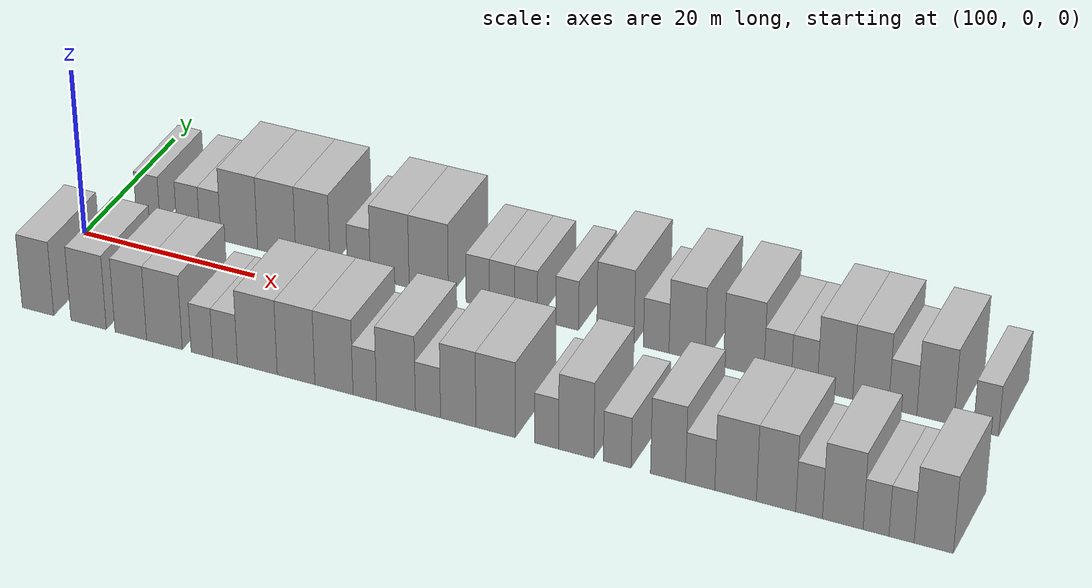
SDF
<sdf version="1.6">
 <world name="default">
  <model name="building_25">
   <static>1</static>
   <pose>105.1513 9.5000 0 0.000000 0.000000 1.570796</pose>
   <link name="link">
    <pose>0 0 3.00 0 0 0</pose>
    <collision name="collision"><geometry><box><size>10.0000 2.8169 6.0000</size></box></geometry></collision>
    <visual name="visual">
     <cast_shadows>0</cast_shadows>
     <geometry><box><size>10.0000 2.8169 6.0000</size></box></geometry>
     <material>
      <script>
       <uri>model://HANNAS_wall/materials/scripts</uri>
       <uri>model://HANNAS_wall/materials/textures</uri>
       <name>vrc/HANNAS_wall</name>
      </script>
     </material>
    </visual>
   </link>
  </model>
  <model name="building_26">
   <static>1</static>
   <pose>109.9169 9.5000 0 0.000000 0.000000 1.570796</pose>
   <link name="link">
    <pose>0 0 3.00 0 0 0</pose>
    <collision name="collision"><geometry><box><size>10.0000 2.7142 6.0000</size></box></geometry></collision>
    <visual name="visual">
     <cast_shadows>0</cast_shadows>
     <geometry><box><size>10.0000 2.7142 6.0000</size></box></geometry>
     <material>
      <script>
       <uri>model://HANNAS_wall/materials/scripts</uri>
       <uri>model://HANNAS_wall/materials/textures</uri>
       <name>vrc/HANNAS_wall</name>
      </script>
     </material>
    </visual>
   </link>
  </model>
  <model name="building_27">
   <static>1</static>
   <pose>112.5251 9.5000 0 0.000000 0.000000 1.570796</pose>
   <link name="link">
    <pose>0 0 3.00 0 0 0</pose>
    <collision name="collision"><geometry><box><size>10.0000 2.5022 6.0000</size></box></geometry></collision>
    <visual name="visual">
     <cast_shadows>0</cast_shadows>
     <geometry><box><size>10.0000 2.5022 6.0000</size></box></geometry>
     <material>
      <script>
       <uri>model://HANNAS_wall/materials/scripts</uri>
       <uri>model://HANNAS_wall/materials/textures</uri>
       <name>vrc/HANNAS_wall</name>
      </script>
     </material>
    </visual>
   </link>
  </model>
  <model name="building_28">
   <static>1</static>
   <pose>115.9399 9.5000 0 0.000000 0.000000 1.570796</pose>
   <link name="link">
    <pose>0 0 4.50 0 0 0</pose>
    <collision name="collision"><geometry><box><size>10.0000 4.3274 9.0000</size></box></geometry></collision>
    <visual name="visual">
     <cast_shadows>0</cast_shadows>
     <geometry><box><size>10.0000 4.3274 9.0000</size></box></geometry>
     <material>
      <script>
       <uri>model://HANNAS_wall/materials/scripts</uri>
       <uri>model://HANNAS_wall/materials/textures</uri>
       <name>vrc/HANNAS_wall</name>
      </script>
     </material>
    </visual>
   </link>
  </model>
  <model name="building_29">
   <static>1</static>
   <pose>120.3343 9.5000 0 0.000000 0.000000 1.570796</pose>
   <link name="link">
    <pose>0 0 4.50 0 0 0</pose>
    <collision name="collision"><geometry><box><size>10.0000 4.4612 9.0000</size></box></geometry></collision>
    <visual name="visual">
     <cast_shadows>0</cast_shadows>
     <geometry><box><size>10.0000 4.4612 9.0000</size></box></geometry>
     <material>
      <script>
       <uri>model://HANNAS_wall/materials/scripts</uri>
       <uri>model://HANNAS_wall/materials/textures</uri>
       <name>vrc/HANNAS_wall</name>
      </script>
     </material>
    </visual>
   </link>
  </model>
  <model name="building_30">
   <static>1</static>
   <pose>124.5504 9.5000 0 0.000000 0.000000 1.570796</pose>
   <link name="link">
    <pose>0 0 4.50 0 0 0</pose>
    <collision name="collision"><geometry><box><size>10.0000 3.9710 9.0000</size></box></geometry></collision>
    <visual name="visual">
     <cast_shadows>0</cast_shadows>
     <geometry><box><size>10.0000 3.9710 9.0000</size></box></geometry>
     <material>
      <script>
       <uri>model://HANNAS_wall/materials/scripts</uri>
       <uri>model://HANNAS_wall/materials/textures</uri>
       <name>vrc/HANNAS_wall</name>
      </script>
     </material>
    </visual>
   </link>
  </model>
  <model name="building_31">
   <static>1</static>
   <pose>129.8526 9.5000 0 0.000000 0.000000 1.570796</pose>
   <link name="link">
    <pose>0 0 3.00 0 0 0</pose>
    <collision name="collision"><geometry><box><size>10.0000 2.6334 6.0000</size></box></geometry></collision>
    <visual name="visual">
     <cast_shadows>0</cast_shadows>
     <geometry><box><size>10.0000 2.6334 6.0000</size></box></geometry>
     <material>
      <script>
       <uri>model://HANNAS_wall/materials/scripts</uri>
       <uri>model://HANNAS_wall/materials/textures</uri>
       <name>vrc/HANNAS_wall</name>
      </script>
     </material>
    </visual>
   </link>
  </model>
  <model name="building_32">
   <static>1</static>
   <pose>133.3780 9.5000 0 0.000000 0.000000 1.570796</pose>
   <link name="link">
    <pose>0 0 4.50 0 0 0</pose>
    <collision name="collision"><geometry><box><size>10.0000 4.4174 9.0000</size></box></geometry></collision>
    <visual name="visual">
     <cast_shadows>0</cast_shadows>
     <geometry><box><size>10.0000 4.4174 9.0000</size></box></geometry>
     <material>
      <script>
       <uri>model://HANNAS_wall/materials/scripts</uri>
       <uri>model://HANNAS_wall/materials/textures</uri>
       <name>vrc/HANNAS_wall</name>
      </script>
     </material>
    </visual>
   </link>
  </model>
  <model name="building_33">
   <static>1</static>
   <pose>137.8079 9.5000 0 0.000000 0.000000 1.570796</pose>
   <link name="link">
    <pose>0 0 4.50 0 0 0</pose>
    <collision name="collision"><geometry><box><size>10.0000 4.4425 9.0000</size></box></geometry></collision>
    <visual name="visual">
     <cast_shadows>0</cast_shadows>
     <geometry><box><size>10.0000 4.4425 9.0000</size></box></geometry>
     <material>
      <script>
       <uri>model://HANNAS_wall/materials/scripts</uri>
       <uri>model://HANNAS_wall/materials/textures</uri>
       <name>vrc/HANNAS_wall</name>
      </script>
     </material>
    </visual>
   </link>
  </model>
  <model name="building_34">
   <static>1</static>
   <pose>143.3333 9.5000 0 0.000000 0.000000 1.570796</pose>
   <link name="link">
    <pose>0 0 3.00 0 0 0</pose>
    <collision name="collision"><geometry><box><size>10.0000 2.6082 6.0000</size></box></geometry></collision>
    <visual name="visual">
     <cast_shadows>0</cast_shadows>
     <geometry><box><size>10.0000 2.6082 6.0000</size></box></geometry>
     <material>
      <script>
       <uri>model://HANNAS_wall/materials/scripts</uri>
       <uri>model://HANNAS_wall/materials/textures</uri>
       <name>vrc/HANNAS_wall</name>
      </script>
     </material>
    </visual>
   </link>
  </model>
  <model name="building_35">
   <static>1</static>
   <pose>146.0515 9.5000 0 0.000000 0.000000 1.570796</pose>
   <link name="link">
    <pose>0 0 3.00 0 0 0</pose>
    <collision name="collision"><geometry><box><size>10.0000 2.8283 6.0000</size></box></geometry></collision>
    <visual name="visual">
     <cast_shadows>0</cast_shadows>
     <geometry><box><size>10.0000 2.8283 6.0000</size></box></geometry>
     <material>
      <script>
       <uri>model://HANNAS_wall/materials/scripts</uri>
       <uri>model://HANNAS_wall/materials/textures</uri>
       <name>vrc/HANNAS_wall</name>
      </script>
     </material>
    </visual>
   </link>
  </model>
  <model name="building_36">
   <static>1</static>
   <pose>148.7235 9.5000 0 0.000000 0.000000 1.570796</pose>
   <link name="link">
    <pose>0 0 3.00 0 0 0</pose>
    <collision name="collision"><geometry><box><size>10.0000 2.5156 6.0000</size></box></geometry></collision>
    <visual name="visual">
     <cast_shadows>0</cast_shadows>
     <geometry><box><size>10.0000 2.5156 6.0000</size></box></geometry>
     <material>
      <script>
       <uri>model://HANNAS_wall/materials/scripts</uri>
       <uri>model://HANNAS_wall/materials/textures</uri>
       <name>vrc/HANNAS_wall</name>
      </script>
     </material>
    </visual>
   </link>
  </model>
  <model name="building_37">
   <static>1</static>
   <pose>153.2467 9.5000 0 0.000000 0.000000 1.570796</pose>
   <link name="link">
    <pose>0 0 3.00 0 0 0</pose>
    <collision name="collision"><geometry><box><size>10.0000 2.5309 6.0000</size></box></geometry></collision>
    <visual name="visual">
     <cast_shadows>0</cast_shadows>
     <geometry><box><size>10.0000 2.5309 6.0000</size></box></geometry>
     <material>
      <script>
       <uri>model://HANNAS_wall/materials/scripts</uri>
       <uri>model://HANNAS_wall/materials/textures</uri>
       <name>vrc/HANNAS_wall</name>
      </script>
     </material>
    </visual>
   </link>
  </model>
  <model name="building_38">
   <static>1</static>
   <pose>158.5469 9.5000 0 0.000000 0.000000 1.570796</pose>
   <link name="link">
    <pose>0 0 4.50 0 0 0</pose>
    <collision name="collision"><geometry><box><size>10.0000 4.0694 9.0000</size></box></geometry></collision>
    <visual name="visual">
     <cast_shadows>0</cast_shadows>
     <geometry><box><size>10.0000 4.0694 9.0000</size></box></geometry>
     <material>
      <script>
       <uri>model://HANNAS_wall/materials/scripts</uri>
       <uri>model://HANNAS_wall/materials/textures</uri>
       <name>vrc/HANNAS_wall</name>
      </script>
     </material>
    </visual>
   </link>
  </model>
  <model name="building_39">
   <static>1</static>
   <pose>162.9694 9.5000 0 0.000000 0.000000 1.570796</pose>
   <link name="link">
    <pose>0 0 3.00 0 0 0</pose>
    <collision name="collision"><geometry><box><size>10.0000 2.7758 6.0000</size></box></geometry></collision>
    <visual name="visual">
     <cast_shadows>0</cast_shadows>
     <geometry><box><size>10.0000 2.7758 6.0000</size></box></geometry>
     <material>
      <script>
       <uri>model://HANNAS_wall/materials/scripts</uri>
       <uri>model://HANNAS_wall/materials/textures</uri>
       <name>vrc/HANNAS_wall</name>
      </script>
     </material>
    </visual>
   </link>
  </model>
  <model name="building_40">
   <static>1</static>
   <pose>166.2814 9.5000 0 0.000000 0.000000 1.570796</pose>
   <link name="link">
    <pose>0 0 4.50 0 0 0</pose>
    <collision name="collision"><geometry><box><size>10.0000 3.8482 9.0000</size></box></geometry></collision>
    <visual name="visual">
     <cast_shadows>0</cast_shadows>
     <geometry><box><size>10.0000 3.8482 9.0000</size></box></geometry>
     <material>
      <script>
       <uri>model://HANNAS_wall/materials/scripts</uri>
       <uri>model://HANNAS_wall/materials/textures</uri>
       <name>vrc/HANNAS_wall</name>
      </script>
     </material>
    </visual>
   </link>
  </model>
  <model name="building_41">
   <static>1</static>
   <pose>172.3492 9.5000 0 0.000000 0.000000 1.570796</pose>
   <link name="link">
    <pose>0 0 4.50 0 0 0</pose>
    <collision name="collision"><geometry><box><size>10.0000 4.2873 9.0000</size></box></geometry></collision>
    <visual name="visual">
     <cast_shadows>0</cast_shadows>
     <geometry><box><size>10.0000 4.2873 9.0000</size></box></geometry>
     <material>
      <script>
       <uri>model://HANNAS_wall/materials/scripts</uri>
       <uri>model://HANNAS_wall/materials/textures</uri>
       <name>vrc/HANNAS_wall</name>
      </script>
     </material>
    </visual>
   </link>
  </model>
  <model name="building_42">
   <static>1</static>
   <pose>175.9388 9.5000 0 0.000000 0.000000 1.570796</pose>
   <link name="link">
    <pose>0 0 3.00 0 0 0</pose>
    <collision name="collision"><geometry><box><size>10.0000 2.8920 6.0000</size></box></geometry></collision>
    <visual name="visual">
     <cast_shadows>0</cast_shadows>
     <geometry><box><size>10.0000 2.8920 6.0000</size></box></geometry>
     <material>
      <script>
       <uri>model://HANNAS_wall/materials/scripts</uri>
       <uri>model://HANNAS_wall/materials/textures</uri>
       <name>vrc/HANNAS_wall</name>
      </script>
     </material>
    </visual>
   </link>
  </model>
  <model name="building_43">
   <static>1</static>
   <pose>178.7550 9.5000 0 0.000000 0.000000 1.570796</pose>
   <link name="link">
    <pose>0 0 3.00 0 0 0</pose>
    <collision name="collision"><geometry><box><size>10.0000 2.7403 6.0000</size></box></geometry></collision>
    <visual name="visual">
     <cast_shadows>0</cast_shadows>
     <geometry><box><size>10.0000 2.7403 6.0000</size></box></geometry>
     <material>
      <script>
       <uri>model://HANNAS_wall/materials/scripts</uri>
       <uri>model://HANNAS_wall/materials/textures</uri>
       <name>vrc/HANNAS_wall</name>
      </script>
     </material>
    </visual>
   </link>
  </model>
  <model name="building_44">
   <static>1</static>
   <pose>181.9767 9.5000 0 0.000000 0.000000 1.570796</pose>
   <link name="link">
    <pose>0 0 4.50 0 0 0</pose>
    <collision name="collision"><geometry><box><size>10.0000 3.7032 9.0000</size></box></geometry></collision>
    <visual name="visual">
     <cast_shadows>0</cast_shadows>
     <geometry><box><size>10.0000 3.7032 9.0000</size></box></geometry>
     <material>
      <script>
       <uri>model://HANNAS_wall/materials/scripts</uri>
       <uri>model://HANNAS_wall/materials/textures</uri>
       <name>vrc/HANNAS_wall</name>
      </script>
     </material>
    </visual>
   </link>
  </model>
  <model name="building_45">
   <static>1</static>
   <pose>185.6967 9.5000 0 0.000000 0.000000 1.570796</pose>
   <link name="link">
    <pose>0 0 4.50 0 0 0</pose>
    <collision name="collision"><geometry><box><size>10.0000 3.7369 9.0000</size></box></geometry></collision>
    <visual name="visual">
     <cast_shadows>0</cast_shadows>
     <geometry><box><size>10.0000 3.7369 9.0000</size></box></geometry>
     <material>
      <script>
       <uri>model://HANNAS_wall/materials/scripts</uri>
       <uri>model://HANNAS_wall/materials/textures</uri>
       <name>vrc/HANNAS_wall</name>
      </script>
     </material>
    </visual>
   </link>
  </model>
  <model name="building_46">
   <static>1</static>
   <pose>189.0179 9.5000 0 0.000000 0.000000 1.570796</pose>
   <link name="link">
    <pose>0 0 3.00 0 0 0</pose>
    <collision name="collision"><geometry><box><size>10.0000 2.9056 6.0000</size></box></geometry></collision>
    <visual name="visual">
     <cast_shadows>0</cast_shadows>
     <geometry><box><size>10.0000 2.9056 6.0000</size></box></geometry>
     <material>
      <script>
       <uri>model://HANNAS_wall/materials/scripts</uri>
       <uri>model://HANNAS_wall/materials/textures</uri>
       <name>vrc/HANNAS_wall</name>
      </script>
     </material>
    </visual>
   </link>
  </model>
  <model name="building_47">
   <static>1</static>
   <pose>192.3687 9.5000 0 0.000000 0.000000 1.570796</pose>
   <link name="link">
    <pose>0 0 4.50 0 0 0</pose>
    <collision name="collision"><geometry><box><size>10.0000 3.7958 9.0000</size></box></geometry></collision>
    <visual name="visual">
     <cast_shadows>0</cast_shadows>
     <geometry><box><size>10.0000 3.7958 9.0000</size></box></geometry>
     <material>
      <script>
       <uri>model://HANNAS_wall/materials/scripts</uri>
       <uri>model://HANNAS_wall/materials/textures</uri>
       <name>vrc/HANNAS_wall</name>
      </script>
     </material>
    </visual>
   </link>
  </model>
  <model name="building_48">
   <static>1</static>
   <pose>197.5424 9.5000 0 0.000000 0.000000 1.570796</pose>
   <link name="link">
    <pose>0 0 3.00 0 0 0</pose>
    <collision name="collision"><geometry><box><size>10.0000 2.5516 6.0000</size></box></geometry></collision>
    <visual name="visual">
     <cast_shadows>0</cast_shadows>
     <geometry><box><size>10.0000 2.5516 6.0000</size></box></geometry>
     <material>
      <script>
       <uri>model://HANNAS_wall/materials/scripts</uri>
       <uri>model://HANNAS_wall/materials/textures</uri>
       <name>vrc/HANNAS_wall</name>
      </script>
     </material>
    </visual>
   </link>
  </model>
  <model name="building_74">
   <static>1</static>
   <pose>102.6564 -9.5000 0 0.000000 0.000000 1.570796</pose>
   <link name="link">
    <pose>0 0 4.50 0 0 0</pose>
    <collision name="collision"><geometry><box><size>10.0000 3.6771 9.0000</size></box></geometry></collision>
    <visual name="visual">
     <cast_shadows>0</cast_shadows>
     <geometry><box><size>10.0000 3.6771 9.0000</size></box></geometry>
     <material>
      <script>
       <uri>model://HANNAS_wall/materials/scripts</uri>
       <uri>model://HANNAS_wall/materials/textures</uri>
       <name>vrc/HANNAS_wall</name>
      </script>
     </material>
    </visual>
   </link>
  </model>
  <model name="building_75">
   <static>1</static>
   <pose>108.5452 -9.5000 0 0.000000 0.000000 1.570796</pose>
   <link name="link">
    <pose>0 0 4.50 0 0 0</pose>
    <collision name="collision"><geometry><box><size>10.0000 4.1005 9.0000</size></box></geometry></collision>
    <visual name="visual">
     <cast_shadows>0</cast_shadows>
     <geometry><box><size>10.0000 4.1005 9.0000</size></box></geometry>
     <material>
      <script>
       <uri>model://HANNAS_wall/materials/scripts</uri>
       <uri>model://HANNAS_wall/materials/textures</uri>
       <name>vrc/HANNAS_wall</name>
      </script>
     </material>
    </visual>
   </link>
  </model>
  <model name="building_76">
   <static>1</static>
   <pose>113.4081 -9.5000 0 0.000000 0.000000 1.570796</pose>
   <link name="link">
    <pose>0 0 4.50 0 0 0</pose>
    <collision name="collision"><geometry><box><size>10.0000 3.6253 9.0000</size></box></geometry></collision>
    <visual name="visual">
     <cast_shadows>0</cast_shadows>
     <geometry><box><size>10.0000 3.6253 9.0000</size></box></geometry>
     <material>
      <script>
       <uri>model://HANNAS_wall/materials/scripts</uri>
       <uri>model://HANNAS_wall/materials/textures</uri>
       <name>vrc/HANNAS_wall</name>
      </script>
     </material>
    </visual>
   </link>
  </model>
  <model name="building_77">
   <static>1</static>
   <pose>117.2557 -9.5000 0 0.000000 0.000000 1.570796</pose>
   <link name="link">
    <pose>0 0 4.50 0 0 0</pose>
    <collision name="collision"><geometry><box><size>10.0000 4.0700 9.0000</size></box></geometry></collision>
    <visual name="visual">
     <cast_shadows>0</cast_shadows>
     <geometry><box><size>10.0000 4.0700 9.0000</size></box></geometry>
     <material>
      <script>
       <uri>model://HANNAS_wall/materials/scripts</uri>
       <uri>model://HANNAS_wall/materials/textures</uri>
       <name>vrc/HANNAS_wall</name>
      </script>
     </material>
    </visual>
   </link>
  </model>
  <model name="building_78">
   <static>1</static>
   <pose>121.5148 -9.5000 0 0.000000 0.000000 1.570796</pose>
   <link name="link">
    <pose>0 0 3.00 0 0 0</pose>
    <collision name="collision"><geometry><box><size>10.0000 2.4481 6.0000</size></box></geometry></collision>
    <visual name="visual">
     <cast_shadows>0</cast_shadows>
     <geometry><box><size>10.0000 2.4481 6.0000</size></box></geometry>
     <material>
      <script>
       <uri>model://HANNAS_wall/materials/scripts</uri>
       <uri>model://HANNAS_wall/materials/textures</uri>
       <name>vrc/HANNAS_wall</name>
      </script>
     </material>
    </visual>
   </link>
  </model>
  <model name="building_79">
   <static>1</static>
   <pose>124.1214 -9.5000 0 0.000000 0.000000 1.570796</pose>
   <link name="link">
    <pose>0 0 3.00 0 0 0</pose>
    <collision name="collision"><geometry><box><size>10.0000 2.7652 6.0000</size></box></geometry></collision>
    <visual name="visual">
     <cast_shadows>0</cast_shadows>
     <geometry><box><size>10.0000 2.7652 6.0000</size></box></geometry>
     <material>
      <script>
       <uri>model://HANNAS_wall/materials/scripts</uri>
       <uri>model://HANNAS_wall/materials/textures</uri>
       <name>vrc/HANNAS_wall</name>
      </script>
     </material>
    </visual>
   </link>
  </model>
  <model name="building_80">
   <static>1</static>
   <pose>127.7281 -9.5000 0 0.000000 0.000000 1.570796</pose>
   <link name="link">
    <pose>0 0 4.50 0 0 0</pose>
    <collision name="collision"><geometry><box><size>10.0000 4.4482 9.0000</size></box></geometry></collision>
    <visual name="visual">
     <cast_shadows>0</cast_shadows>
     <geometry><box><size>10.0000 4.4482 9.0000</size></box></geometry>
     <material>
      <script>
       <uri>model://HANNAS_wall/materials/scripts</uri>
       <uri>model://HANNAS_wall/materials/textures</uri>
       <name>vrc/HANNAS_wall</name>
      </script>
     </material>
    </visual>
   </link>
  </model>
  <model name="building_81">
   <static>1</static>
   <pose>132.0433 -9.5000 0 0.000000 0.000000 1.570796</pose>
   <link name="link">
    <pose>0 0 4.50 0 0 0</pose>
    <collision name="collision"><geometry><box><size>10.0000 4.1823 9.0000</size></box></geometry></collision>
    <visual name="visual">
     <cast_shadows>0</cast_shadows>
     <geometry><box><size>10.0000 4.1823 9.0000</size></box></geometry>
     <material>
      <script>
       <uri>model://HANNAS_wall/materials/scripts</uri>
       <uri>model://HANNAS_wall/materials/textures</uri>
       <name>vrc/HANNAS_wall</name>
      </script>
     </material>
    </visual>
   </link>
  </model>
  <model name="building_82">
   <static>1</static>
   <pose>136.2312 -9.5000 0 0.000000 0.000000 1.570796</pose>
   <link name="link">
    <pose>0 0 4.50 0 0 0</pose>
    <collision name="collision"><geometry><box><size>10.0000 4.1935 9.0000</size></box></geometry></collision>
    <visual name="visual">
     <cast_shadows>0</cast_shadows>
     <geometry><box><size>10.0000 4.1935 9.0000</size></box></geometry>
     <material>
      <script>
       <uri>model://HANNAS_wall/materials/scripts</uri>
       <uri>model://HANNAS_wall/materials/textures</uri>
       <name>vrc/HANNAS_wall</name>
      </script>
     </material>
    </visual>
   </link>
  </model>
  <model name="building_83">
   <static>1</static>
   <pose>139.6091 -9.5000 0 0.000000 0.000000 1.570796</pose>
   <link name="link">
    <pose>0 0 3.00 0 0 0</pose>
    <collision name="collision"><geometry><box><size>10.0000 2.5623 6.0000</size></box></geometry></collision>
    <visual name="visual">
     <cast_shadows>0</cast_shadows>
     <geometry><box><size>10.0000 2.5623 6.0000</size></box></geometry>
     <material>
      <script>
       <uri>model://HANNAS_wall/materials/scripts</uri>
       <uri>model://HANNAS_wall/materials/textures</uri>
       <name>vrc/HANNAS_wall</name>
      </script>
     </material>
    </visual>
   </link>
  </model>
  <model name="building_84">
   <static>1</static>
   <pose>143.0068 -9.5000 0 0.000000 0.000000 1.570796</pose>
   <link name="link">
    <pose>0 0 4.50 0 0 0</pose>
    <collision name="collision"><geometry><box><size>10.0000 4.2331 9.0000</size></box></geometry></collision>
    <visual name="visual">
     <cast_shadows>0</cast_shadows>
     <geometry><box><size>10.0000 4.2331 9.0000</size></box></geometry>
     <material>
      <script>
       <uri>model://HANNAS_wall/materials/scripts</uri>
       <uri>model://HANNAS_wall/materials/textures</uri>
       <name>vrc/HANNAS_wall</name>
      </script>
     </material>
    </visual>
   </link>
  </model>
  <model name="building_85">
   <static>1</static>
   <pose>146.4750 -9.5000 0 0.000000 0.000000 1.570796</pose>
   <link name="link">
    <pose>0 0 3.00 0 0 0</pose>
    <collision name="collision"><geometry><box><size>10.0000 2.7032 6.0000</size></box></geometry></collision>
    <visual name="visual">
     <cast_shadows>0</cast_shadows>
     <geometry><box><size>10.0000 2.7032 6.0000</size></box></geometry>
     <material>
      <script>
       <uri>model://HANNAS_wall/materials/scripts</uri>
       <uri>model://HANNAS_wall/materials/textures</uri>
       <name>vrc/HANNAS_wall</name>
      </script>
     </material>
    </visual>
   </link>
  </model>
  <model name="building_86">
   <static>1</static>
   <pose>149.7241 -9.5000 0 0.000000 0.000000 1.570796</pose>
   <link name="link">
    <pose>0 0 4.50 0 0 0</pose>
    <collision name="collision"><geometry><box><size>10.0000 3.7951 9.0000</size></box></geometry></collision>
    <visual name="visual">
     <cast_shadows>0</cast_shadows>
     <geometry><box><size>10.0000 3.7951 9.0000</size></box></geometry>
     <material>
      <script>
       <uri>model://HANNAS_wall/materials/scripts</uri>
       <uri>model://HANNAS_wall/materials/textures</uri>
       <name>vrc/HANNAS_wall</name>
      </script>
     </material>
    </visual>
   </link>
  </model>
  <model name="building_87">
   <static>1</static>
   <pose>153.7301 -9.5000 0 0.000000 0.000000 1.570796</pose>
   <link name="link">
    <pose>0 0 4.50 0 0 0</pose>
    <collision name="collision"><geometry><box><size>10.0000 4.2170 9.0000</size></box></geometry></collision>
    <visual name="visual">
     <cast_shadows>0</cast_shadows>
     <geometry><box><size>10.0000 4.2170 9.0000</size></box></geometry>
     <material>
      <script>
       <uri>model://HANNAS_wall/materials/scripts</uri>
       <uri>model://HANNAS_wall/materials/textures</uri>
       <name>vrc/HANNAS_wall</name>
      </script>
     </material>
    </visual>
   </link>
  </model>
  <model name="building_88">
   <static>1</static>
   <pose>159.1124 -9.5000 0 0.000000 0.000000 1.570796</pose>
   <link name="link">
    <pose>0 0 3.00 0 0 0</pose>
    <collision name="collision"><geometry><box><size>10.0000 2.5476 6.0000</size></box></geometry></collision>
    <visual name="visual">
     <cast_shadows>0</cast_shadows>
     <geometry><box><size>10.0000 2.5476 6.0000</size></box></geometry>
     <material>
      <script>
       <uri>model://HANNAS_wall/materials/scripts</uri>
       <uri>model://HANNAS_wall/materials/textures</uri>
       <name>vrc/HANNAS_wall</name>
      </script>
     </material>
    </visual>
   </link>
  </model>
  <model name="building_89">
   <static>1</static>
   <pose>162.2343 -9.5000 0 0.000000 0.000000 1.570796</pose>
   <link name="link">
    <pose>0 0 4.50 0 0 0</pose>
    <collision name="collision"><geometry><box><size>10.0000 3.6961 9.0000</size></box></geometry></collision>
    <visual name="visual">
     <cast_shadows>0</cast_shadows>
     <geometry><box><size>10.0000 3.6961 9.0000</size></box></geometry>
     <material>
      <script>
       <uri>model://HANNAS_wall/materials/scripts</uri>
       <uri>model://HANNAS_wall/materials/textures</uri>
       <name>vrc/HANNAS_wall</name>
      </script>
     </material>
    </visual>
   </link>
  </model>
  <model name="building_90">
   <static>1</static>
   <pose>166.5253 -9.5000 0 0.000000 0.000000 1.570796</pose>
   <link name="link">
    <pose>0 0 3.00 0 0 0</pose>
    <collision name="collision"><geometry><box><size>10.0000 2.8860 6.0000</size></box></geometry></collision>
    <visual name="visual">
     <cast_shadows>0</cast_shadows>
     <geometry><box><size>10.0000 2.8860 6.0000</size></box></geometry>
     <material>
      <script>
       <uri>model://HANNAS_wall/materials/scripts</uri>
       <uri>model://HANNAS_wall/materials/textures</uri>
       <name>vrc/HANNAS_wall</name>
      </script>
     </material>
    </visual>
   </link>
  </model>
  <model name="building_91">
   <static>1</static>
   <pose>171.7703 -9.5000 0 0.000000 0.000000 1.570796</pose>
   <link name="link">
    <pose>0 0 4.50 0 0 0</pose>
    <collision name="collision"><geometry><box><size>10.0000 3.6038 9.0000</size></box></geometry></collision>
    <visual name="visual">
     <cast_shadows>0</cast_shadows>
     <geometry><box><size>10.0000 3.6038 9.0000</size></box></geometry>
     <material>
      <script>
       <uri>model://HANNAS_wall/materials/scripts</uri>
       <uri>model://HANNAS_wall/materials/textures</uri>
       <name>vrc/HANNAS_wall</name>
      </script>
     </material>
    </visual>
   </link>
  </model>
  <model name="building_92">
   <static>1</static>
   <pose>175.0695 -9.5000 0 0.000000 0.000000 1.570796</pose>
   <link name="link">
    <pose>0 0 3.00 0 0 0</pose>
    <collision name="collision"><geometry><box><size>10.0000 2.9947 6.0000</size></box></geometry></collision>
    <visual name="visual">
     <cast_shadows>0</cast_shadows>
     <geometry><box><size>10.0000 2.9947 6.0000</size></box></geometry>
     <material>
      <script>
       <uri>model://HANNAS_wall/materials/scripts</uri>
       <uri>model://HANNAS_wall/materials/textures</uri>
       <name>vrc/HANNAS_wall</name>
      </script>
     </material>
    </visual>
   </link>
  </model>
  <model name="building_93">
   <static>1</static>
   <pose>178.6800 -9.5000 0 0.000000 0.000000 1.570796</pose>
   <link name="link">
    <pose>0 0 4.50 0 0 0</pose>
    <collision name="collision"><geometry><box><size>10.0000 4.2261 9.0000</size></box></geometry></collision>
    <visual name="visual">
     <cast_shadows>0</cast_shadows>
     <geometry><box><size>10.0000 4.2261 9.0000</size></box></geometry>
     <material>
      <script>
       <uri>model://HANNAS_wall/materials/scripts</uri>
       <uri>model://HANNAS_wall/materials/textures</uri>
       <name>vrc/HANNAS_wall</name>
      </script>
     </material>
    </visual>
   </link>
  </model>
  <model name="building_94">
   <static>1</static>
   <pose>182.7765 -9.5000 0 0.000000 0.000000 1.570796</pose>
   <link name="link">
    <pose>0 0 4.50 0 0 0</pose>
    <collision name="collision"><geometry><box><size>10.0000 3.9670 9.0000</size></box></geometry></collision>
    <visual name="visual">
     <cast_shadows>0</cast_shadows>
     <geometry><box><size>10.0000 3.9670 9.0000</size></box></geometry>
     <material>
      <script>
       <uri>model://HANNAS_wall/materials/scripts</uri>
       <uri>model://HANNAS_wall/materials/textures</uri>
       <name>vrc/HANNAS_wall</name>
      </script>
     </material>
    </visual>
   </link>
  </model>
  <model name="building_95">
   <static>1</static>
   <pose>186.1011 -9.5000 0 0.000000 0.000000 1.570796</pose>
   <link name="link">
    <pose>0 0 3.00 0 0 0</pose>
    <collision name="collision"><geometry><box><size>10.0000 2.6822 6.0000</size></box></geometry></collision>
    <visual name="visual">
     <cast_shadows>0</cast_shadows>
     <geometry><box><size>10.0000 2.6822 6.0000</size></box></geometry>
     <material>
      <script>
       <uri>model://HANNAS_wall/materials/scripts</uri>
       <uri>model://HANNAS_wall/materials/textures</uri>
       <name>vrc/HANNAS_wall</name>
      </script>
     </material>
    </visual>
   </link>
  </model>
  <model name="building_96">
   <static>1</static>
   <pose>189.4599 -9.5000 0 0.000000 0.000000 1.570796</pose>
   <link name="link">
    <pose>0 0 4.50 0 0 0</pose>
    <collision name="collision"><geometry><box><size>10.0000 4.0353 9.0000</size></box></geometry></collision>
    <visual name="visual">
     <cast_shadows>0</cast_shadows>
     <geometry><box><size>10.0000 4.0353 9.0000</size></box></geometry>
     <material>
      <script>
       <uri>model://HANNAS_wall/materials/scripts</uri>
       <uri>model://HANNAS_wall/materials/textures</uri>
       <name>vrc/HANNAS_wall</name>
      </script>
     </material>
    </visual>
   </link>
  </model>
  <model name="building_97">
   <static>1</static>
   <pose>192.7577 -9.5000 0 0.000000 0.000000 1.570796</pose>
   <link name="link">
    <pose>0 0 3.00 0 0 0</pose>
    <collision name="collision"><geometry><box><size>10.0000 2.5603 6.0000</size></box></geometry></collision>
    <visual name="visual">
     <cast_shadows>0</cast_shadows>
     <geometry><box><size>10.0000 2.5603 6.0000</size></box></geometry>
     <material>
      <script>
       <uri>model://HANNAS_wall/materials/scripts</uri>
       <uri>model://HANNAS_wall/materials/textures</uri>
       <name>vrc/HANNAS_wall</name>
      </script>
     </material>
    </visual>
   </link>
  </model>
  <model name="building_98">
   <static>1</static>
   <pose>195.2770 -9.5000 0 0.000000 0.000000 1.570796</pose>
   <link name="link">
    <pose>0 0 3.00 0 0 0</pose>
    <collision name="collision"><geometry><box><size>10.0000 2.4781 6.0000</size></box></geometry></collision>
    <visual name="visual">
     <cast_shadows>0</cast_shadows>
     <geometry><box><size>10.0000 2.4781 6.0000</size></box></geometry>
     <material>
      <script>
       <uri>model://HANNAS_wall/materials/scripts</uri>
       <uri>model://HANNAS_wall/materials/textures</uri>
       <name>vrc/HANNAS_wall</name>
      </script>
     </material>
    </visual>
   </link>
  </model>
  <model name="building_99">
   <static>1</static>
   <pose>198.4373 -9.5000 0 0.000000 0.000000 1.570796</pose>
   <link name="link">
    <pose>0 0 4.50 0 0 0</pose>
    <collision name="collision"><geometry><box><size>10.0000 3.8425 9.0000</size></box></geometry></collision>
    <visual name="visual">
     <cast_shadows>0</cast_shadows>
     <geometry><box><size>10.0000 3.8425 9.0000</size></box></geometry>
     <material>
      <script>
       <uri>model://HANNAS_wall/materials/scripts</uri>
       <uri>model://HANNAS_wall/materials/textures</uri>
       <name>vrc/HANNAS_wall</name>
      </script>
     </material>
    </visual>
   </link>
  </model>
 </world>
</sdf>
